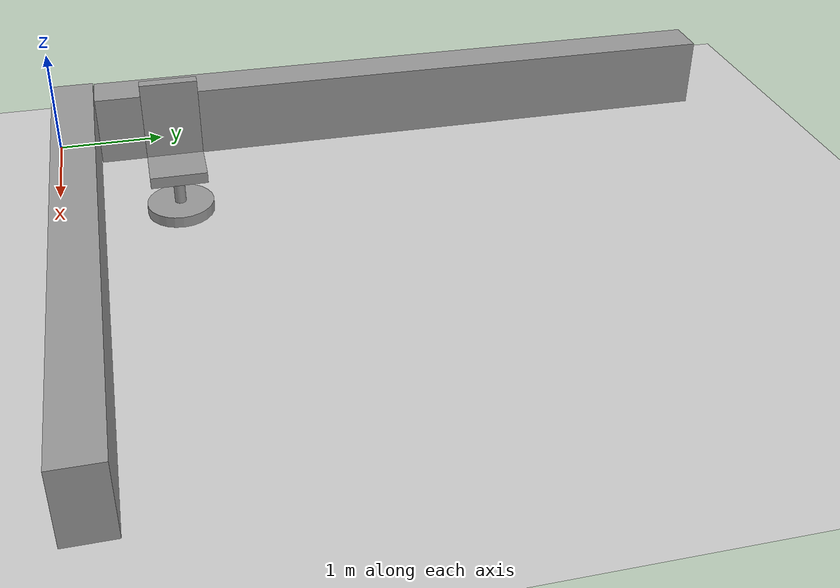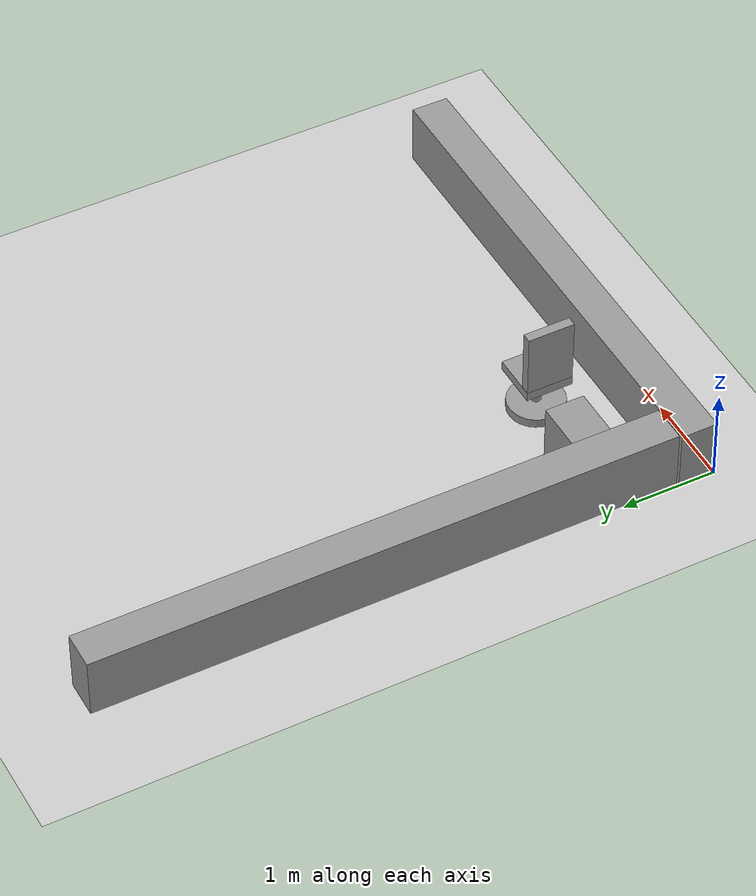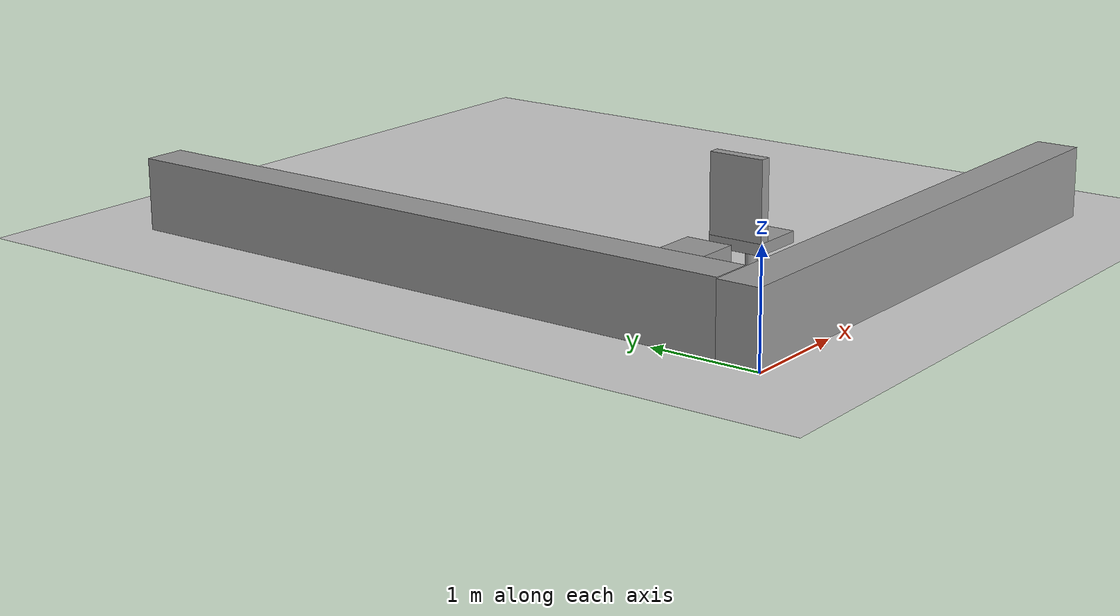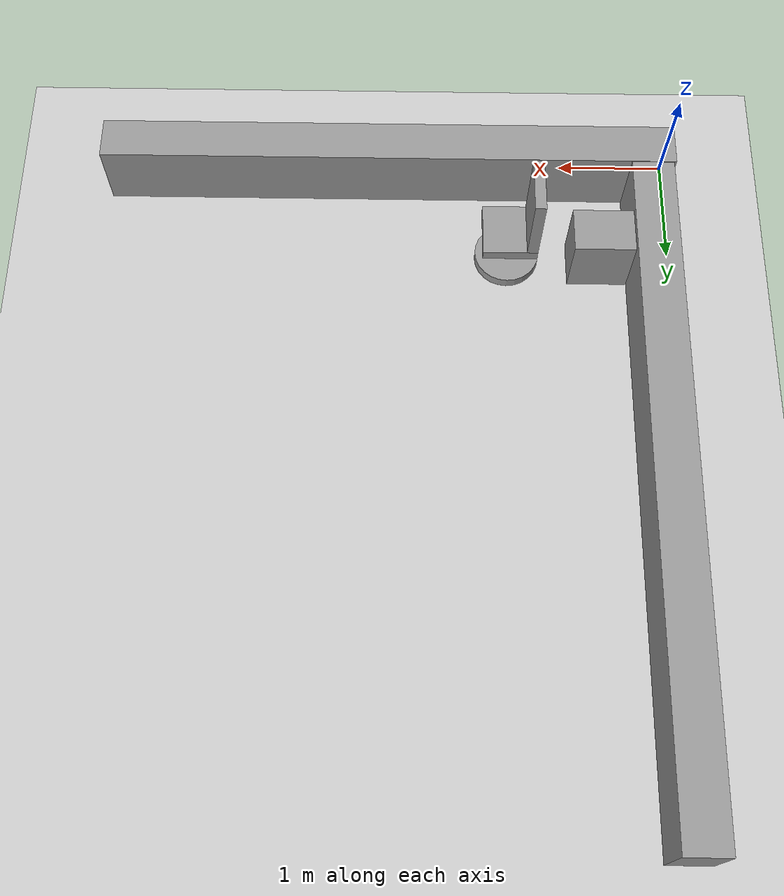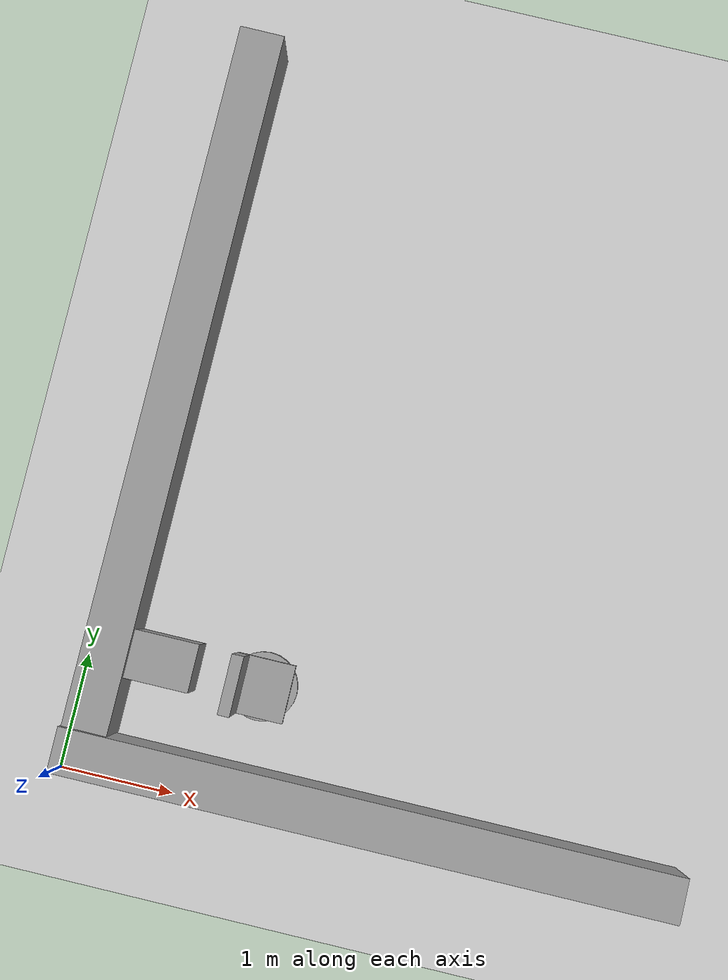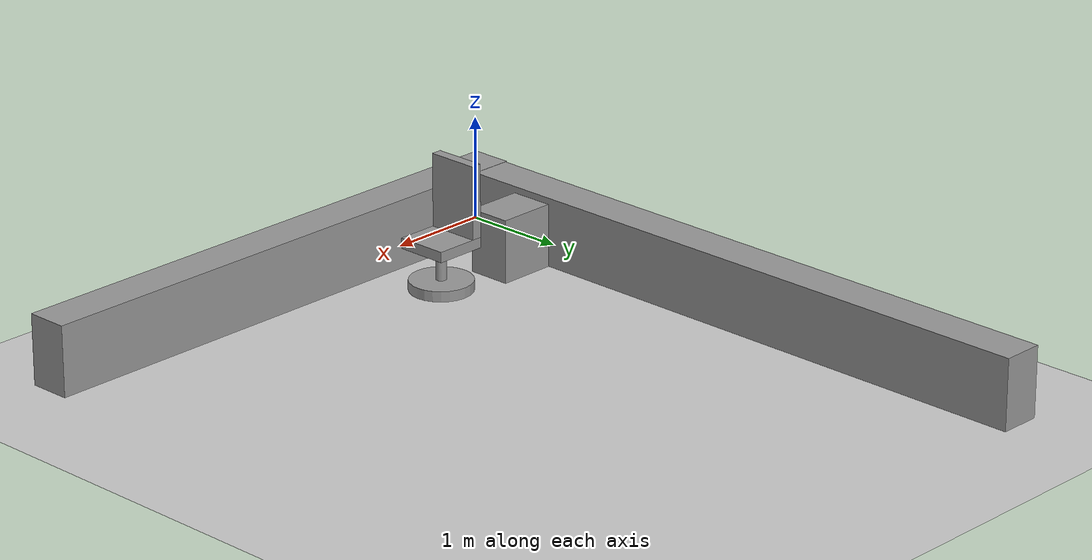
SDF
<sdf version="1.6">
 <world name="default">
  <model name="ground_plane">
   <static>1</static>
   <link name="link">
    <collision name="collision">
     <geometry><plane><normal>0 0 1</normal><size>100 100</size></plane></geometry>
     <surface><friction><ode><mu>100</mu><mu2>50</mu2></ode></friction></surface>
    </collision>
    <visual name="visual">
     <cast_shadows>0</cast_shadows>
     <geometry><plane><normal>0 0 1</normal><size>100 100</size></plane></geometry>
     <material>
      <script><uri>file://media/materials/scripts/gazebo.material</uri><name>Gazebo/Grey</name></script>
     </material>
    </visual>
   </link>
  </model>
  <model name="L8401_mounted_heater">
   <link name="link_1">
    <pose>1.23386 -1.6503 -0.000337 0 -0 0</pose>
    <inertial>
     <mass>1.40657</mass>
     <inertia>
      <ixx>0.0695898</ixx>
      <ixy>0</ixy>
      <ixz>0</ixz>
      <iyy>3.47219</iyy>
      <iyz>0</iyz>
      <izz>3.43877</izz>
     </inertia>
    </inertial>
    <visual name="visual">
     <geometry><box><size>5.40211 0.392756 0.662878</size></box></geometry>
     <material>
      <lighting>1</lighting>
      <script><uri>file://media/materials/scripts/gazebo.material</uri><name>Gazebo/Grey</name></script>
      <ambient>0.3 0.3 0.3 1</ambient>
      <diffuse>0.7 0.7 0.7 1</diffuse>
      <specular>0.01 0.01 0.01 1</specular>
      <emissive>0 0 0 1</emissive>
      <shader type="vertex"><normal_map>__default__</normal_map></shader>
     </material>
    </visual>
    <collision name="collision">
     <geometry><box><size>5.40211 0.392756 0.662878</size></box></geometry>
     <surface>
      <friction>
       <ode><mu>1</mu><mu2>1</mu2><fdir1>0 0 0</fdir1><slip1>0</slip1><slip2>0</slip2></ode>
       <torsional>
        <coefficient>1</coefficient>
        <patch_radius>0</patch_radius>
        <surface_radius>0</surface_radius>
        <use_patch_radius>1</use_patch_radius>
        <ode><slip>0</slip></ode>
       </torsional>
      </friction>
      <bounce><restitution_coefficient>0</restitution_coefficient><threshold>1e+06</threshold></bounce>
      <contact>
       <collide_without_contact>0</collide_without_contact>
       <collide_without_contact_bitmask>1</collide_without_contact_bitmask>
       <collide_bitmask>1</collide_bitmask>
       <ode>
        <soft_cfm>0</soft_cfm>
        <soft_erp>0.2</soft_erp>
        <kp>1e+13</kp>
        <kd>1</kd>
        <max_vel>0.01</max_vel>
        <min_depth>0</min_depth>
       </ode>
       <bullet>
        <split_impulse>1</split_impulse>
        <split_impulse_penetration_threshold>-0.01</split_impulse_penetration_threshold>
        <soft_cfm>0</soft_cfm>
        <soft_erp>0.2</soft_erp>
        <kp>1e+13</kp>
        <kd>1</kd>
       </bullet>
      </contact>
     </surface>
    </collision>
   </link>
   <link name="link_1_clone">
    <pose>-1.23386 1.6503 0.000337 0 0 -1.57467</pose>
    <inertial>
     <mass>1.62191</mass>
     <inertia>
      <ixx>0.0809796</ixx>
      <ixy>0</ixy>
      <ixz>0</ixz>
      <iyy>5.24067</iyy>
      <iyz>0</iyz>
      <izz>5.20139</izz>
     </inertia>
    </inertial>
    <visual name="visual">
     <geometry><box><size>6.19103 0.392756 0.666978</size></box></geometry>
     <material>
      <lighting>1</lighting>
      <script><uri>file://media/materials/scripts/gazebo.material</uri><name>Gazebo/Grey</name></script>
      <ambient>0.3 0.3 0.3 1</ambient>
      <diffuse>0.7 0.7 0.7 1</diffuse>
      <specular>0.01 0.01 0.01 1</specular>
      <emissive>0 0 0 1</emissive>
      <shader type="vertex"><normal_map>__default__</normal_map></shader>
     </material>
    </visual>
    <collision name="collision">
     <geometry><box><size>6.19103 0.392756 0.666978</size></box></geometry>
     <surface>
      <friction>
       <ode><mu>1</mu><mu2>1</mu2><fdir1>0 0 0</fdir1><slip1>0</slip1><slip2>0</slip2></ode>
       <torsional>
        <coefficient>1</coefficient>
        <patch_radius>0</patch_radius>
        <surface_radius>0</surface_radius>
        <use_patch_radius>1</use_patch_radius>
        <ode><slip>0</slip></ode>
       </torsional>
      </friction>
      <bounce><restitution_coefficient>0</restitution_coefficient><threshold>1e+06</threshold></bounce>
      <contact>
       <collide_without_contact>0</collide_without_contact>
       <collide_without_contact_bitmask>1</collide_without_contact_bitmask>
       <collide_bitmask>1</collide_bitmask>
       <ode>
        <soft_cfm>0</soft_cfm>
        <soft_erp>0.2</soft_erp>
        <kp>1e+13</kp>
        <kd>1</kd>
        <max_vel>0.01</max_vel>
        <min_depth>0</min_depth>
       </ode>
       <bullet>
        <split_impulse>1</split_impulse>
        <split_impulse_penetration_threshold>-0.01</split_impulse_penetration_threshold>
        <soft_cfm>0</soft_cfm>
        <soft_erp>0.2</soft_erp>
        <kp>1e+13</kp>
        <kd>1</kd>
       </bullet>
      </contact>
     </surface>
    </collision>
   </link>
   <static>1</static>
   <pose>1.46087 1.8518 0.337569 1e-05 -4.1e-05 -5.2e-05</pose>
  </model>
  <model name="L8401_drawer_A">
   <link name="link">
    <inertial>
     <mass>1</mass>
     <inertia>
      <ixx>0.166667</ixx>
      <ixy>0</ixy>
      <ixz>0</ixz>
      <iyy>0.166667</iyy>
      <iyz>0</iyz>
      <izz>0.166667</izz>
     </inertia>
    </inertial>
    <visual name="visual">
     <geometry><box><size>0.56 0.42 0.61</size></box></geometry>
     <material>
      <script><name>Gazebo/Grey</name><uri>file://media/materials/scripts/gazebo.material</uri></script>
      <ambient>0.3 0.3 0.3 1</ambient>
      <diffuse>0.7 0.7 0.7 1</diffuse>
      <specular>0.01 0.01 0.01 1</specular>
      <emissive>0 0 0 1</emissive>
      <shader type="vertex"><normal_map>__default__</normal_map></shader>
     </material>
    </visual>
    <collision name="collision">
     <geometry><box><size>0.56 0.42 0.61</size></box></geometry>
     <surface>
      <friction>
       <ode><mu>1</mu><mu2>1</mu2><fdir1>0 0 0</fdir1><slip1>0</slip1><slip2>0</slip2></ode>
       <torsional>
        <coefficient>1</coefficient>
        <patch_radius>0</patch_radius>
        <surface_radius>0</surface_radius>
        <use_patch_radius>1</use_patch_radius>
        <ode><slip>0</slip></ode>
       </torsional>
      </friction>
      <bounce><restitution_coefficient>0</restitution_coefficient><threshold>1e+06</threshold></bounce>
      <contact>
       <collide_without_contact>0</collide_without_contact>
       <collide_without_contact_bitmask>1</collide_without_contact_bitmask>
       <collide_bitmask>1</collide_bitmask>
       <ode>
        <soft_cfm>0</soft_cfm>
        <soft_erp>0.2</soft_erp>
        <kp>1e+13</kp>
        <kd>1</kd>
        <max_vel>0.01</max_vel>
        <min_depth>0</min_depth>
       </ode>
       <bullet>
        <split_impulse>1</split_impulse>
        <split_impulse_penetration_threshold>-0.01</split_impulse_penetration_threshold>
        <soft_cfm>0</soft_cfm>
        <soft_erp>0.2</soft_erp>
        <kp>1e+13</kp>
        <kd>1</kd>
       </bullet>
      </contact>
     </surface>
    </collision>
   </link>
   <static>1</static>
   <pose>0.69612 1.11916 0.305 0 -0 0</pose>
  </model>
  <model name="L8401_chair">
   <link name="link">
    <pose>0 -0 0.25 0 -0 0</pose>
    <inertial>
     <mass>1</mass>
     <inertia><ixx>0.145833</ixx><ixy>0</ixy><ixz>0</ixz><iyy>0.145833</iyy><iyz>0</iyz><izz>0.125</izz></inertia>
    </inertial>
    <visual name="visual">
     <geometry><cylinder><radius>0.05</radius><length>0.3</length></cylinder></geometry>
     <material>
      <script><name>Gazebo/Grey</name><uri>file://media/materials/scripts/gazebo.material</uri></script>
      <ambient>0.3 0.3 0.3 1</ambient>
      <diffuse>0.7 0.7 0.7 1</diffuse>
      <specular>0.01 0.01 0.01 1</specular>
      <emissive>0 0 0 1</emissive>
      <shader type="vertex"><normal_map>__default__</normal_map></shader>
     </material>
    </visual>
    <collision name="collision">
     <geometry><cylinder><radius>0.05</radius><length>0.3</length></cylinder></geometry>
     <surface>
      <friction>
       <ode><mu>1</mu><mu2>1</mu2><fdir1>0 0 0</fdir1><slip1>0</slip1><slip2>0</slip2></ode>
       <torsional>
        <coefficient>1</coefficient>
        <patch_radius>0</patch_radius>
        <surface_radius>0</surface_radius>
        <use_patch_radius>1</use_patch_radius>
        <ode><slip>0</slip></ode>
       </torsional>
      </friction>
      <bounce><restitution_coefficient>0</restitution_coefficient><threshold>1e+06</threshold></bounce>
      <contact>
       <collide_without_contact>0</collide_without_contact>
       <collide_without_contact_bitmask>1</collide_without_contact_bitmask>
       <collide_bitmask>1</collide_bitmask>
       <ode>
        <soft_cfm>0</soft_cfm>
        <soft_erp>0.2</soft_erp>
        <kp>1e+13</kp>
        <kd>1</kd>
        <max_vel>0.01</max_vel>
        <min_depth>0</min_depth>
       </ode>
       <bullet>
        <split_impulse>1</split_impulse>
        <split_impulse_penetration_threshold>-0.01</split_impulse_penetration_threshold>
        <soft_cfm>0</soft_cfm>
        <soft_erp>0.2</soft_erp>
        <kp>1e+13</kp>
        <kd>1</kd>
       </bullet>
      </contact>
     </surface>
    </collision>
   </link>
   <link name="link_0">
    <pose>0 -0 0.45 0 -0 0</pose>
    <inertial>
     <mass>1</mass>
     <inertia>
      <ixx>0.166667</ixx>
      <ixy>0</ixy>
      <ixz>0</ixz>
      <iyy>0.166667</iyy>
      <iyz>0</iyz>
      <izz>0.166667</izz>
     </inertia>
    </inertial>
    <visual name="visual">
     <geometry><box><size>0.5 0.5 0.1</size></box></geometry>
     <material>
      <lighting>1</lighting>
      <script><uri>file://media/materials/scripts/gazebo.material</uri><name>Gazebo/Grey</name></script>
      <ambient>0.3 0.3 0.3 1</ambient>
      <diffuse>0.7 0.7 0.7 1</diffuse>
      <specular>0.01 0.01 0.01 1</specular>
      <emissive>0 0 0 1</emissive>
      <shader type="vertex"><normal_map>__default__</normal_map></shader>
     </material>
    </visual>
    <collision name="collision">
     <geometry><box><size>0.5 0.5 0.1</size></box></geometry>
     <surface>
      <friction>
       <ode><mu>1</mu><mu2>1</mu2><fdir1>0 0 0</fdir1><slip1>0</slip1><slip2>0</slip2></ode>
       <torsional>
        <coefficient>1</coefficient>
        <patch_radius>0</patch_radius>
        <surface_radius>0</surface_radius>
        <use_patch_radius>1</use_patch_radius>
        <ode><slip>0</slip></ode>
       </torsional>
      </friction>
      <bounce><restitution_coefficient>0</restitution_coefficient><threshold>1e+06</threshold></bounce>
      <contact>
       <collide_without_contact>0</collide_without_contact>
       <collide_without_contact_bitmask>1</collide_without_contact_bitmask>
       <collide_bitmask>1</collide_bitmask>
       <ode>
        <soft_cfm>0</soft_cfm>
        <soft_erp>0.2</soft_erp>
        <kp>1e+13</kp>
        <kd>1</kd>
        <max_vel>0.01</max_vel>
        <min_depth>0</min_depth>
       </ode>
       <bullet>
        <split_impulse>1</split_impulse>
        <split_impulse_penetration_threshold>-0.01</split_impulse_penetration_threshold>
        <soft_cfm>0</soft_cfm>
        <soft_erp>0.2</soft_erp>
        <kp>1e+13</kp>
        <kd>1</kd>
       </bullet>
      </contact>
     </surface>
    </collision>
   </link>
   <link name="link_1">
    <pose>0 -0 0.05 0 -0 0</pose>
    <inertial>
     <mass>1</mass>
     <inertia><ixx>0.145833</ixx><ixy>0</ixy><ixz>0</ixz><iyy>0.145833</iyy><iyz>0</iyz><izz>0.125</izz></inertia>
    </inertial>
    <visual name="visual">
     <geometry><cylinder><radius>0.3</radius><length>0.1</length></cylinder></geometry>
     <material>
      <lighting>1</lighting>
      <script><uri>file://media/materials/scripts/gazebo.material</uri><name>Gazebo/Grey</name></script>
      <ambient>0.3 0.3 0.3 1</ambient>
      <diffuse>0.7 0.7 0.7 1</diffuse>
      <specular>0.01 0.01 0.01 1</specular>
      <emissive>0 0 0 1</emissive>
      <shader type="vertex"><normal_map>__default__</normal_map></shader>
     </material>
    </visual>
    <collision name="collision">
     <geometry><cylinder><radius>0.3</radius><length>0.1</length></cylinder></geometry>
     <surface>
      <friction>
       <ode><mu>1</mu><mu2>1</mu2><fdir1>0 0 0</fdir1><slip1>0</slip1><slip2>0</slip2></ode>
       <torsional>
        <coefficient>1</coefficient>
        <patch_radius>0</patch_radius>
        <surface_radius>0</surface_radius>
        <use_patch_radius>1</use_patch_radius>
        <ode><slip>0</slip></ode>
       </torsional>
      </friction>
      <bounce><restitution_coefficient>0</restitution_coefficient><threshold>1e+06</threshold></bounce>
      <contact>
       <collide_without_contact>0</collide_without_contact>
       <collide_without_contact_bitmask>1</collide_without_contact_bitmask>
       <collide_bitmask>1</collide_bitmask>
       <ode>
        <soft_cfm>0</soft_cfm>
        <soft_erp>0.2</soft_erp>
        <kp>1e+13</kp>
        <kd>1</kd>
        <max_vel>0.01</max_vel>
        <min_depth>0</min_depth>
       </ode>
       <bullet>
        <split_impulse>1</split_impulse>
        <split_impulse_penetration_threshold>-0.01</split_impulse_penetration_threshold>
        <soft_cfm>0</soft_cfm>
        <soft_erp>0.2</soft_erp>
        <kp>1e+13</kp>
        <kd>1</kd>
       </bullet>
      </contact>
     </surface>
    </collision>
   </link>
   <link name="link_2">
    <pose>-0.2 0 0.85 0 -0 0</pose>
    <inertial>
     <mass>1</mass>
     <inertia>
      <ixx>0.166667</ixx>
      <ixy>0</ixy>
      <ixz>0</ixz>
      <iyy>0.166667</iyy>
      <iyz>0</iyz>
      <izz>0.166667</izz>
     </inertia>
    </inertial>
    <visual name="visual">
     <geometry><box><size>0.1 0.5 0.7</size></box></geometry>
     <material>
      <lighting>1</lighting>
      <script><uri>file://media/materials/scripts/gazebo.material</uri><name>Gazebo/Grey</name></script>
      <ambient>0.3 0.3 0.3 1</ambient>
      <diffuse>0.7 0.7 0.7 1</diffuse>
      <specular>0.01 0.01 0.01 1</specular>
      <emissive>0 0 0 1</emissive>
      <shader type="vertex"><normal_map>__default__</normal_map></shader>
     </material>
    </visual>
    <collision name="collision">
     <geometry><box><size>0.1 0.5 0.7</size></box></geometry>
     <surface>
      <friction>
       <ode><mu>1</mu><mu2>1</mu2><fdir1>0 0 0</fdir1><slip1>0</slip1><slip2>0</slip2></ode>
       <torsional>
        <coefficient>1</coefficient>
        <patch_radius>0</patch_radius>
        <surface_radius>0</surface_radius>
        <use_patch_radius>1</use_patch_radius>
        <ode><slip>0</slip></ode>
       </torsional>
      </friction>
      <bounce><restitution_coefficient>0</restitution_coefficient><threshold>1e+06</threshold></bounce>
      <contact>
       <collide_without_contact>0</collide_without_contact>
       <collide_without_contact_bitmask>1</collide_without_contact_bitmask>
       <collide_bitmask>1</collide_bitmask>
       <ode>
        <soft_cfm>0</soft_cfm>
        <soft_erp>0.2</soft_erp>
        <kp>1e+13</kp>
        <kd>1</kd>
        <max_vel>0.01</max_vel>
        <min_depth>0</min_depth>
       </ode>
       <bullet>
        <split_impulse>1</split_impulse>
        <split_impulse_penetration_threshold>-0.01</split_impulse_penetration_threshold>
        <soft_cfm>0</soft_cfm>
        <soft_erp>0.2</soft_erp>
        <kp>1e+13</kp>
        <kd>1</kd>
       </bullet>
      </contact>
     </surface>
    </collision>
   </link>
   <joint name="link_0_JOINT_2" type="fixed">
    <parent>link_0</parent>
    <child>link_2</child>
    <physics>
     <ode><limit><cfm>0</cfm><erp>0.2</erp></limit><suspension><cfm>0</cfm><erp>0.2</erp></suspension></ode>
    </physics>
   </joint>
   <joint name="link_1_JOINT_0" type="fixed">
    <parent>link_1</parent>
    <child>link</child>
    <physics>
     <ode><limit><cfm>0</cfm><erp>0.2</erp></limit><suspension><cfm>0</cfm><erp>0.2</erp></suspension></ode>
    </physics>
   </joint>
   <joint name="link_JOINT_1" type="fixed">
    <parent>link</parent>
    <child>link_0</child>
    <physics>
     <ode><limit><cfm>0</cfm><erp>0.2</erp></limit><suspension><cfm>0</cfm><erp>0.2</erp></suspension></ode>
    </physics>
   </joint>
   <static>1</static>
   <pose>1.55767 1.08991 0.05 0 0 -3.6e-05</pose>
  </model>
 </world>
</sdf>
